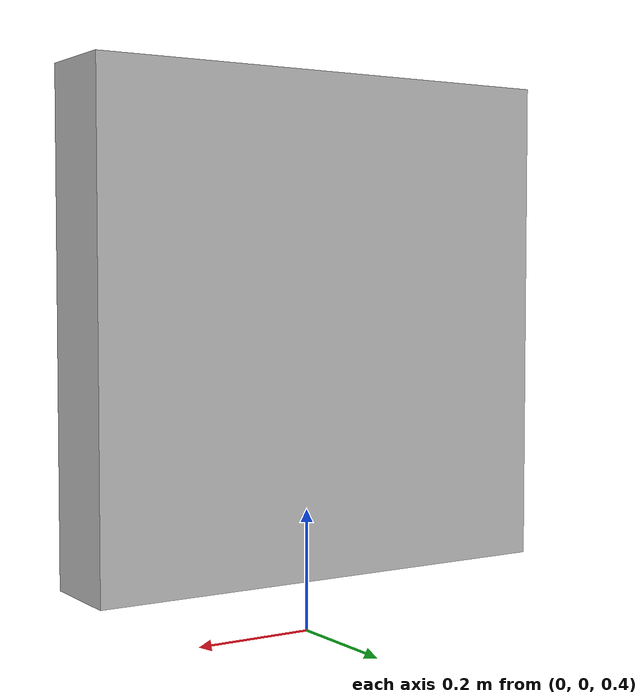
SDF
<?xml version='1.0'?>
<sdf version='1.6'>
  <model name='window'>
    <link name='link_2'>
         <visual name='visual'>
        <pose frame=''>0 0 0.9 0 -0 0</pose>
        <geometry>
          <box>
            <size>0.8 0.15 0.8</size>
          </box>
        </geometry>
         <material>
          <lighting>1</lighting>
          <ambient>
            <color sid="emission">0 0 0 1</color>
          </ambient>
          <emission>
            <color sid="emission">0 0 0 1</color>
          </emission>
          <diffuse>
            <color sid="diffuse">0 0 0 1</color>
          </diffuse>

        </material>
        <cast_shadows>1</cast_shadows>
        <transparency>0</transparency>
      </visual>
      <collision name='collision'>
        <laser_retro>0</laser_retro>
        <max_contacts>10</max_contacts>
        <pose frame=''>0 0 0.9 0 -0 0</pose>
        <geometry>
          <box>
            <size>0.8 0.15 0.8</size>
          </box>
        </geometry>

      </collision>
    </link>
    <static>1</static>
    <allow_auto_disable>1</allow_auto_disable>
  </model>
</sdf>
